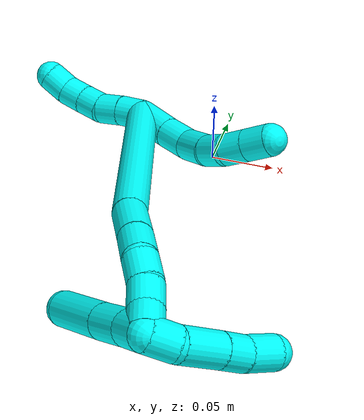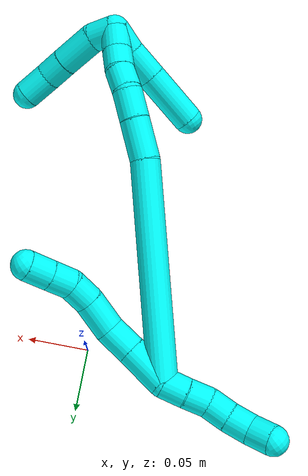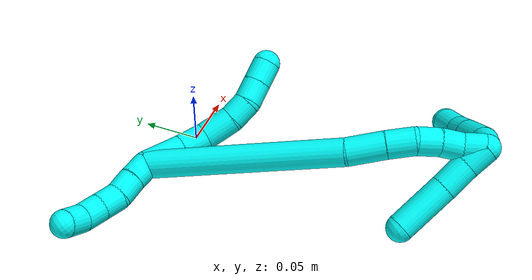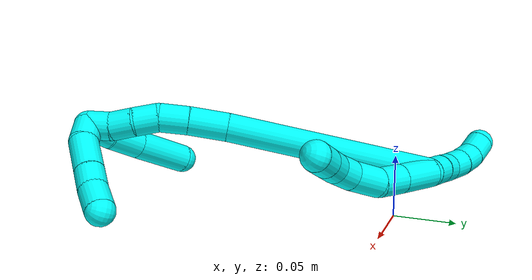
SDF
<sdf version="1.7">
 <world name="default">
  <model name="photoneo_s_sensor">
   <static>1</static>
   <pose>0 0 2 1.57079 1.57079 3.14159</pose>
   <link name="link">
    <inertial><mass>0.1</mass></inertial>
    <sensor name="sensor" type="depth">
     <update_rate>30</update_rate>
     <camera>
      <horizontal_fov>1.22</horizontal_fov>
      <image><width>1920</width><height>1200</height><format>B8G8R8</format></image>
      <clip><near>0.1</near><far>4</far></clip>
      <depth_camera><output>points</output></depth_camera>
     </camera>
     <plugin name="camera_plugin" filename="libgazebo_ros_depth_camera.so">
      <baseline>0.2</baseline>
      <alwaysOn>1</alwaysOn>
      <updateRate>0.0</updateRate>
      <cameraName>camera_ir</cameraName>
      <imageTopicName>/camera/color/image_raw</imageTopicName>
      <cameraInfoTopicName>/camera/color/camera_info</cameraInfoTopicName>
      <depthImageTopicName>/camera/depth/image_raw</depthImageTopicName>
      <depthImageCameraInfoTopicName>/camera/depth/camera_info</depthImageCameraInfoTopicName>
      <pointCloudTopicName>/camera/depth/points</pointCloudTopicName>
      <frameName>fr_optical</frameName>
      <pointCloudCutoff>0.1</pointCloudCutoff>
      <pointCloudCutoffMax>2.0</pointCloudCutoffMax>
      <distortionK1>0</distortionK1>
      <distortionK2>0</distortionK2>
      <distortionK3>0</distortionK3>
      <distortionT1>0</distortionT1>
      <distortionT2>0</distortionT2>
      <CxPrime>0</CxPrime>
      <Cx>0</Cx>
      <Cy>0</Cy>
      <focalLength>0</focalLength>
      <hackBaseline>0</hackBaseline>
     </plugin>
    </sensor>
   </link>
  </model>
  <model name="3">
   <static>0</static>
   <link name="3">
    <collision name="collision-cylinder-e_1_2_8">
     <pose>0.007059 0.000361 0.016135 -0.022396 0.412299 -0.004684</pose>
     <geometry><cylinder><radius>0.0125</radius><length>0.03523</length></cylinder></geometry>
     <surface>
      <friction><ode><mu>1.16</mu><mu2>1.16</mu2><slip1>0</slip1><slip2>0</slip2></ode></friction>
      <contact><ode><kp>1e+06</kp><kd>1</kd><max_vel>0</max_vel><min_depth>0.001</min_depth></ode></contact>
     </surface>
    </collision>
    <visual name="visual-cylinder-e_1_2_8">
     <pose>0.007059 0.000361 0.016135 -0.022396 0.412299 -0.004684</pose>
     <geometry><cylinder><radius>0.0125</radius><length>0.03523</length></cylinder></geometry>
     <material><ambient>0.003922 1 0.996078 1</ambient></material>
    </visual>
    <collision name="collision-cylinder-e_2_8_9">
     <pose>0.018751 0.001431 0.04379 -0.061424 0.381795 -0.011874</pose>
     <geometry><cylinder><radius>0.0125</radius><length>0.024875</length></cylinder></geometry>
     <surface>
      <friction><ode><mu>1.16</mu><mu2>1.16</mu2><slip1>0</slip1><slip2>0</slip2></ode></friction>
      <contact><ode><kp>1e+06</kp><kd>1</kd><max_vel>0</max_vel><min_depth>0.001</min_depth></ode></contact>
     </surface>
    </collision>
    <visual name="visual-cylinder-e_2_8_9">
     <pose>0.018751 0.001431 0.04379 -0.061424 0.381795 -0.011874</pose>
     <geometry><cylinder><radius>0.0125</radius><length>0.024875</length></cylinder></geometry>
     <material><ambient>0.003922 1 0.996078 1</ambient></material>
    </visual>
    <collision name="collision-cylinder-e_3_9_10">
     <pose>0.0241 0.001727 0.069868 0.028341 0.049011 0.000695</pose>
     <geometry><cylinder><radius>0.0125</radius><length>0.029162</length></cylinder></geometry>
     <surface>
      <friction><ode><mu>1.16</mu><mu2>1.16</mu2><slip1>0</slip1><slip2>0</slip2></ode></friction>
      <contact><ode><kp>1e+06</kp><kd>1</kd><max_vel>0</max_vel><min_depth>0.001</min_depth></ode></contact>
     </surface>
    </collision>
    <visual name="visual-cylinder-e_3_9_10">
     <pose>0.0241 0.001727 0.069868 0.028341 0.049011 0.000695</pose>
     <geometry><cylinder><radius>0.0125</radius><length>0.029162</length></cylinder></geometry>
     <material><ambient>0.003922 1 0.996078 1</ambient></material>
    </visual>
    <collision name="collision-cylinder-e_4_10_11">
     <pose>0.024379 0.003179 0.094385 -0.185067 -0.042907 0.003982</pose>
     <geometry><cylinder><radius>0.0125</radius><length>0.020284</length></cylinder></geometry>
     <surface>
      <friction><ode><mu>1.16</mu><mu2>1.16</mu2><slip1>0</slip1><slip2>0</slip2></ode></friction>
      <contact><ode><kp>1e+06</kp><kd>1</kd><max_vel>0</max_vel><min_depth>0.001</min_depth></ode></contact>
     </surface>
    </collision>
    <visual name="visual-cylinder-e_4_10_11">
     <pose>0.024379 0.003179 0.094385 -0.185067 -0.042907 0.003982</pose>
     <geometry><cylinder><radius>0.0125</radius><length>0.020284</length></cylinder></geometry>
     <material><ambient>0.003922 1 0.996078 1</ambient></material>
    </visual>
    <collision name="collision-cylinder-e_5_11_12">
     <pose>0.023597 0.010085 0.113033 -0.525825 -0.034486 0.009283</pose>
     <geometry><cylinder><radius>0.0125</radius><length>0.020101</length></cylinder></geometry>
     <surface>
      <friction><ode><mu>1.16</mu><mu2>1.16</mu2><slip1>0</slip1><slip2>0</slip2></ode></friction>
      <contact><ode><kp>1e+06</kp><kd>1</kd><max_vel>0</max_vel><min_depth>0.001</min_depth></ode></contact>
     </surface>
    </collision>
    <visual name="visual-cylinder-e_5_11_12">
     <pose>0.023597 0.010085 0.113033 -0.525825 -0.034486 0.009283</pose>
     <geometry><cylinder><radius>0.0125</radius><length>0.020101</length></cylinder></geometry>
     <material><ambient>0.003922 1 0.996078 1</ambient></material>
    </visual>
    <collision name="collision-cylinder-e_6_12_6">
     <pose>0.022811 0.020178 0.130541 -0.520107 -0.043241 0.011507</pose>
     <geometry><cylinder><radius>0.0125</radius><length>0.020348</length></cylinder></geometry>
     <surface>
      <friction><ode><mu>1.16</mu><mu2>1.16</mu2><slip1>0</slip1><slip2>0</slip2></ode></friction>
      <contact><ode><kp>1e+06</kp><kd>1</kd><max_vel>0</max_vel><min_depth>0.001</min_depth></ode></contact>
     </surface>
    </collision>
    <visual name="visual-cylinder-e_6_12_6">
     <pose>0.022811 0.020178 0.130541 -0.520107 -0.043241 0.011507</pose>
     <geometry><cylinder><radius>0.0125</radius><length>0.020348</length></cylinder></geometry>
     <material><ambient>0.003922 1 0.996078 1</ambient></material>
    </visual>
    <collision name="collision-cylinder-e_1_2_13">
     <pose>-0.003407 -0.003917 -0.008547 2.7119 -0.347706 -1.35537</pose>
     <geometry><cylinder><radius>0.0125</radius><length>0.02</length></cylinder></geometry>
     <surface>
      <friction><ode><mu>1.16</mu><mu2>1.16</mu2><slip1>0</slip1><slip2>0</slip2></ode></friction>
      <contact><ode><kp>1e+06</kp><kd>1</kd><max_vel>0</max_vel><min_depth>0.001</min_depth></ode></contact>
     </surface>
    </collision>
    <visual name="visual-cylinder-e_1_2_13">
     <pose>-0.003407 -0.003917 -0.008547 2.7119 -0.347706 -1.35537</pose>
     <geometry><cylinder><radius>0.0125</radius><length>0.02</length></cylinder></geometry>
     <material><ambient>0.003922 1 0.996078 1</ambient></material>
    </visual>
    <collision name="collision-cylinder-e_2_13_14">
     <pose>-0.009563 -0.012235 -0.025642 2.66601 -0.278394 -1.04823</pose>
     <geometry><cylinder><radius>0.0125</radius><length>0.02</length></cylinder></geometry>
     <surface>
      <friction><ode><mu>1.16</mu><mu2>1.16</mu2><slip1>0</slip1><slip2>0</slip2></ode></friction>
      <contact><ode><kp>1e+06</kp><kd>1</kd><max_vel>0</max_vel><min_depth>0.001</min_depth></ode></contact>
     </surface>
    </collision>
    <visual name="visual-cylinder-e_2_13_14">
     <pose>-0.009563 -0.012235 -0.025642 2.66601 -0.278394 -1.04823</pose>
     <geometry><cylinder><radius>0.0125</radius><length>0.02</length></cylinder></geometry>
     <material><ambient>0.003922 1 0.996078 1</ambient></material>
    </visual>
    <collision name="collision-cylinder-e_3_14_15">
     <pose>-0.016786 -0.018461 -0.042945 2.93625 -0.463946 -2.319</pose>
     <geometry><cylinder><radius>0.0125</radius><length>0.02</length></cylinder></geometry>
     <surface>
      <friction><ode><mu>1.16</mu><mu2>1.16</mu2><slip1>0</slip1><slip2>0</slip2></ode></friction>
      <contact><ode><kp>1e+06</kp><kd>1</kd><max_vel>0</max_vel><min_depth>0.001</min_depth></ode></contact>
     </surface>
    </collision>
    <visual name="visual-cylinder-e_3_14_15">
     <pose>-0.016786 -0.018461 -0.042945 2.93625 -0.463946 -2.319</pose>
     <geometry><cylinder><radius>0.0125</radius><length>0.02</length></cylinder></geometry>
     <material><ambient>0.003922 1 0.996078 1</ambient></material>
    </visual>
    <collision name="collision-cylinder-e_4_15_16">
     <pose>-0.02671 -0.022744 -0.059716 2.84394 -0.5763 -2.20496</pose>
     <geometry><cylinder><radius>0.0125</radius><length>0.02</length></cylinder></geometry>
     <surface>
      <friction><ode><mu>1.16</mu><mu2>1.16</mu2><slip1>0</slip1><slip2>0</slip2></ode></friction>
      <contact><ode><kp>1e+06</kp><kd>1</kd><max_vel>0</max_vel><min_depth>0.001</min_depth></ode></contact>
     </surface>
    </collision>
    <visual name="visual-cylinder-e_4_15_16">
     <pose>-0.02671 -0.022744 -0.059716 2.84394 -0.5763 -2.20496</pose>
     <geometry><cylinder><radius>0.0125</radius><length>0.02</length></cylinder></geometry>
     <material><ambient>0.003922 1 0.996078 1</ambient></material>
    </visual>
    <collision name="collision-cylinder-e_5_16_5">
     <pose>-0.039973 -0.027229 -0.073635 2.81099 -0.89681 -2.47402</pose>
     <geometry><cylinder><radius>0.0125</radius><length>0.02</length></cylinder></geometry>
     <surface>
      <friction><ode><mu>1.16</mu><mu2>1.16</mu2><slip1>0</slip1><slip2>0</slip2></ode></friction>
      <contact><ode><kp>1e+06</kp><kd>1</kd><max_vel>0</max_vel><min_depth>0.001</min_depth></ode></contact>
     </surface>
    </collision>
    <visual name="visual-cylinder-e_5_16_5">
     <pose>-0.039973 -0.027229 -0.073635 2.81099 -0.89681 -2.47402</pose>
     <geometry><cylinder><radius>0.0125</radius><length>0.02</length></cylinder></geometry>
     <material><ambient>0.003922 1 0.996078 1</ambient></material>
    </visual>
    <collision name="collision-cylinder-e_1_2_17">
     <pose>0.004021 -0.051388 0.073144 0.612443 0.044948 0.014213</pose>
     <geometry><cylinder><radius>0.0125</radius><length>0.178964</length></cylinder></geometry>
     <surface>
      <friction><ode><mu>1.16</mu><mu2>1.16</mu2><slip1>0</slip1><slip2>0</slip2></ode></friction>
      <contact><ode><kp>1e+06</kp><kd>1</kd><max_vel>0</max_vel><min_depth>0.001</min_depth></ode></contact>
     </surface>
    </collision>
    <visual name="visual-cylinder-e_1_2_17">
     <pose>0.004021 -0.051388 0.073144 0.612443 0.044948 0.014213</pose>
     <geometry><cylinder><radius>0.0125</radius><length>0.178964</length></cylinder></geometry>
     <material><ambient>0.003922 1 0.996078 1</ambient></material>
    </visual>
    <collision name="collision-cylinder-e_2_17_18">
     <pose>0.010019 -0.110287 0.161653 0.454665 0.115114 0.026657</pose>
     <geometry><cylinder><radius>0.0125</radius><length>0.034432</length></cylinder></geometry>
     <surface>
      <friction><ode><mu>1.16</mu><mu2>1.16</mu2><slip1>0</slip1><slip2>0</slip2></ode></friction>
      <contact><ode><kp>1e+06</kp><kd>1</kd><max_vel>0</max_vel><min_depth>0.001</min_depth></ode></contact>
     </surface>
    </collision>
    <visual name="visual-cylinder-e_2_17_18">
     <pose>0.010019 -0.110287 0.161653 0.454665 0.115114 0.026657</pose>
     <geometry><cylinder><radius>0.0125</radius><length>0.034432</length></cylinder></geometry>
     <material><ambient>0.003922 1 0.996078 1</ambient></material>
    </visual>
    <collision name="collision-cylinder-e_3_18_19">
     <pose>0.014147 -0.123547 0.18803 0.481119 0.171433 0.042151</pose>
     <geometry><cylinder><radius>0.0125</radius><length>0.025215</length></cylinder></geometry>
     <surface>
      <friction><ode><mu>1.16</mu><mu2>1.16</mu2><slip1>0</slip1><slip2>0</slip2></ode></friction>
      <contact><ode><kp>1e+06</kp><kd>1</kd><max_vel>0</max_vel><min_depth>0.001</min_depth></ode></contact>
     </surface>
    </collision>
    <visual name="visual-cylinder-e_3_18_19">
     <pose>0.014147 -0.123547 0.18803 0.481119 0.171433 0.042151</pose>
     <geometry><cylinder><radius>0.0125</radius><length>0.025215</length></cylinder></geometry>
     <material><ambient>0.003922 1 0.996078 1</ambient></material>
    </visual>
    <collision name="collision-cylinder-e_4_19_20">
     <pose>0.020937 -0.134163 0.207188 0.538617 0.454718 0.127544</pose>
     <geometry><cylinder><radius>0.0125</radius><length>0.021124</length></cylinder></geometry>
     <surface>
      <friction><ode><mu>1.16</mu><mu2>1.16</mu2><slip1>0</slip1><slip2>0</slip2></ode></friction>
      <contact><ode><kp>1e+06</kp><kd>1</kd><max_vel>0</max_vel><min_depth>0.001</min_depth></ode></contact>
     </surface>
    </collision>
    <visual name="visual-cylinder-e_4_19_20">
     <pose>0.020937 -0.134163 0.207188 0.538617 0.454718 0.127544</pose>
     <geometry><cylinder><radius>0.0125</radius><length>0.021124</length></cylinder></geometry>
     <material><ambient>0.003922 1 0.996078 1</ambient></material>
    </visual>
    <collision name="collision-cylinder-e_5_20_21">
     <pose>0.029891 -0.145182 0.222048 0.741679 0.442523 0.174486</pose>
     <geometry><cylinder><radius>0.0125</radius><length>0.020155</length></cylinder></geometry>
     <surface>
      <friction><ode><mu>1.16</mu><mu2>1.16</mu2><slip1>0</slip1><slip2>0</slip2></ode></friction>
      <contact><ode><kp>1e+06</kp><kd>1</kd><max_vel>0</max_vel><min_depth>0.001</min_depth></ode></contact>
     </surface>
    </collision>
    <visual name="visual-cylinder-e_5_20_21">
     <pose>0.029891 -0.145182 0.222048 0.741679 0.442523 0.174486</pose>
     <geometry><cylinder><radius>0.0125</radius><length>0.020155</length></cylinder></geometry>
     <material><ambient>0.003922 1 0.996078 1</ambient></material>
    </visual>
    <collision name="collision-cylinder-e_6_21_1">
     <pose>0.036271 -0.157358 0.236544 0.658837 0.206798 0.070922</pose>
     <geometry><cylinder><radius>0.0125</radius><length>0.02011</length></cylinder></geometry>
     <surface>
      <friction><ode><mu>1.16</mu><mu2>1.16</mu2><slip1>0</slip1><slip2>0</slip2></ode></friction>
      <contact><ode><kp>1e+06</kp><kd>1</kd><max_vel>0</max_vel><min_depth>0.001</min_depth></ode></contact>
     </surface>
    </collision>
    <visual name="visual-cylinder-e_6_21_1">
     <pose>0.036271 -0.157358 0.236544 0.658837 0.206798 0.070922</pose>
     <geometry><cylinder><radius>0.0125</radius><length>0.02011</length></cylinder></geometry>
     <material><ambient>0.003922 1 0.996078 1</ambient></material>
    </visual>
    <collision name="collision-cylinder-e_1_1_22">
     <pose>0.039488 -0.16377 0.233104 3.10709 0.102296 2.49153</pose>
     <geometry><cylinder><radius>0.0125</radius><length>0.022573</length></cylinder></geometry>
     <surface>
      <friction><ode><mu>1.16</mu><mu2>1.16</mu2><slip1>0</slip1><slip2>0</slip2></ode></friction>
      <contact><ode><kp>1e+06</kp><kd>1</kd><max_vel>0</max_vel><min_depth>0.001</min_depth></ode></contact>
     </surface>
    </collision>
    <visual name="visual-cylinder-e_1_1_22">
     <pose>0.039488 -0.16377 0.233104 3.10709 0.102296 2.49153</pose>
     <geometry><cylinder><radius>0.0125</radius><length>0.022573</length></cylinder></geometry>
     <material><ambient>0.003922 1 0.996078 1</ambient></material>
    </visual>
    <collision name="collision-cylinder-e_2_22_23">
     <pose>0.040981 -0.166078 0.208124 3.00294 0.024523 0.349574</pose>
     <geometry><cylinder><radius>0.0125</radius><length>0.027794</length></cylinder></geometry>
     <surface>
      <friction><ode><mu>1.16</mu><mu2>1.16</mu2><slip1>0</slip1><slip2>0</slip2></ode></friction>
      <contact><ode><kp>1e+06</kp><kd>1</kd><max_vel>0</max_vel><min_depth>0.001</min_depth></ode></contact>
     </surface>
    </collision>
    <visual name="visual-cylinder-e_2_22_23">
     <pose>0.040981 -0.166078 0.208124 3.00294 0.024523 0.349574</pose>
     <geometry><cylinder><radius>0.0125</radius><length>0.027794</length></cylinder></geometry>
     <material><ambient>0.003922 1 0.996078 1</ambient></material>
    </visual>
    <collision name="collision-cylinder-e_3_23_4">
     <pose>0.041309 -0.170966 0.169726 3.02169 -0.000513 -0.008549</pose>
     <geometry><cylinder><radius>0.0125</radius><length>0.049633</length></cylinder></geometry>
     <surface>
      <friction><ode><mu>1.16</mu><mu2>1.16</mu2><slip1>0</slip1><slip2>0</slip2></ode></friction>
      <contact><ode><kp>1e+06</kp><kd>1</kd><max_vel>0</max_vel><min_depth>0.001</min_depth></ode></contact>
     </surface>
    </collision>
    <visual name="visual-cylinder-e_3_23_4">
     <pose>0.041309 -0.170966 0.169726 3.02169 -0.000513 -0.008549</pose>
     <geometry><cylinder><radius>0.0125</radius><length>0.049633</length></cylinder></geometry>
     <material><ambient>0.003922 1 0.996078 1</ambient></material>
    </visual>
    <collision name="collision-cylinder-e_1_1_24">
     <pose>0.046195 -0.156679 0.246785 -1.21911 0.83327 -0.599404</pose>
     <geometry><cylinder><radius>0.0125</radius><length>0.021238</length></cylinder></geometry>
     <surface>
      <friction><ode><mu>1.16</mu><mu2>1.16</mu2><slip1>0</slip1><slip2>0</slip2></ode></friction>
      <contact><ode><kp>1e+06</kp><kd>1</kd><max_vel>0</max_vel><min_depth>0.001</min_depth></ode></contact>
     </surface>
    </collision>
    <visual name="visual-cylinder-e_1_1_24">
     <pose>0.046195 -0.156679 0.246785 -1.21911 0.83327 -0.599404</pose>
     <geometry><cylinder><radius>0.0125</radius><length>0.021238</length></cylinder></geometry>
     <material><ambient>0.003922 1 0.996078 1</ambient></material>
    </visual>
    <collision name="collision-cylinder-e_2_24_25">
     <pose>0.065236 -0.137637 0.247863 -1.68234 0.733149 -0.811067</pose>
     <geometry><cylinder><radius>0.0125</radius><length>0.033415</length></cylinder></geometry>
     <surface>
      <friction><ode><mu>1.16</mu><mu2>1.16</mu2><slip1>0</slip1><slip2>0</slip2></ode></friction>
      <contact><ode><kp>1e+06</kp><kd>1</kd><max_vel>0</max_vel><min_depth>0.001</min_depth></ode></contact>
     </surface>
    </collision>
    <visual name="visual-cylinder-e_2_24_25">
     <pose>0.065236 -0.137637 0.247863 -1.68234 0.733149 -0.811067</pose>
     <geometry><cylinder><radius>0.0125</radius><length>0.033415</length></cylinder></geometry>
     <material><ambient>0.003922 1 0.996078 1</ambient></material>
    </visual>
    <collision name="collision-cylinder-e_3_25_26">
     <pose>0.083364 -0.117944 0.245493 -1.70428 0.752392 -0.848362</pose>
     <geometry><cylinder><radius>0.0125</radius><length>0.020332</length></cylinder></geometry>
     <surface>
      <friction><ode><mu>1.16</mu><mu2>1.16</mu2><slip1>0</slip1><slip2>0</slip2></ode></friction>
      <contact><ode><kp>1e+06</kp><kd>1</kd><max_vel>0</max_vel><min_depth>0.001</min_depth></ode></contact>
     </surface>
    </collision>
    <visual name="visual-cylinder-e_3_25_26">
     <pose>0.083364 -0.117944 0.245493 -1.70428 0.752392 -0.848362</pose>
     <geometry><cylinder><radius>0.0125</radius><length>0.020332</length></cylinder></geometry>
     <material><ambient>0.003922 1 0.996078 1</ambient></material>
    </visual>
    <collision name="collision-cylinder-e_4_26_3">
     <pose>0.097305 -0.100272 0.24346 -1.67182 0.593392 -0.652386</pose>
     <geometry><cylinder><radius>0.0125</radius><length>0.025014</length></cylinder></geometry>
     <surface>
      <friction><ode><mu>1.16</mu><mu2>1.16</mu2><slip1>0</slip1><slip2>0</slip2></ode></friction>
      <contact><ode><kp>1e+06</kp><kd>1</kd><max_vel>0</max_vel><min_depth>0.001</min_depth></ode></contact>
     </surface>
    </collision>
    <visual name="visual-cylinder-e_4_26_3">
     <pose>0.097305 -0.100272 0.24346 -1.67182 0.593392 -0.652386</pose>
     <geometry><cylinder><radius>0.0125</radius><length>0.025014</length></cylinder></geometry>
     <material><ambient>0.003922 1 0.996078 1</ambient></material>
    </visual>
    <collision name="collision-sphere-3">
     <pose>0.104299 -0.089956 0.242414 0 -0 0</pose>
     <geometry><sphere><radius>0.0125</radius></sphere></geometry>
     <surface>
      <friction><ode><mu>1.16</mu><mu2>1.16</mu2><slip1>0</slip1><slip2>0</slip2></ode></friction>
      <contact><ode><kp>1e+06</kp><kd>1</kd><max_vel>0</max_vel><min_depth>0.001</min_depth></ode></contact>
     </surface>
    </collision>
    <visual name="visual-sphere-3">
     <pose>0.104299 -0.089956 0.242414 0 -0 0</pose>
     <geometry><sphere><radius>0.0125</radius></sphere></geometry>
     <material><ambient>0.003922 1 0.996078 1</ambient></material>
    </visual>
    <collision name="collision-sphere-26">
     <pose>0.090311 -0.110588 0.244506 0 -0 0</pose>
     <geometry><sphere><radius>0.0125</radius></sphere></geometry>
     <surface>
      <friction><ode><mu>1.16</mu><mu2>1.16</mu2><slip1>0</slip1><slip2>0</slip2></ode></friction>
      <contact><ode><kp>1e+06</kp><kd>1</kd><max_vel>0</max_vel><min_depth>0.001</min_depth></ode></contact>
     </surface>
    </collision>
    <visual name="visual-sphere-26">
     <pose>0.090311 -0.110588 0.244506 0 -0 0</pose>
     <geometry><sphere><radius>0.0125</radius></sphere></geometry>
     <material><ambient>0.003922 1 0.996078 1</ambient></material>
    </visual>
    <collision name="collision-sphere-25">
     <pose>0.076417 -0.125299 0.246481 0 -0 0</pose>
     <geometry><sphere><radius>0.0125</radius></sphere></geometry>
     <surface>
      <friction><ode><mu>1.16</mu><mu2>1.16</mu2><slip1>0</slip1><slip2>0</slip2></ode></friction>
      <contact><ode><kp>1e+06</kp><kd>1</kd><max_vel>0</max_vel><min_depth>0.001</min_depth></ode></contact>
     </surface>
    </collision>
    <visual name="visual-sphere-25">
     <pose>0.076417 -0.125299 0.246481 0 -0 0</pose>
     <geometry><sphere><radius>0.0125</radius></sphere></geometry>
     <material><ambient>0.003922 1 0.996078 1</ambient></material>
    </visual>
    <collision name="collision-sphere-24">
     <pose>0.054055 -0.149975 0.249245 0 -0 0</pose>
     <geometry><sphere><radius>0.0125</radius></sphere></geometry>
     <surface>
      <friction><ode><mu>1.16</mu><mu2>1.16</mu2><slip1>0</slip1><slip2>0</slip2></ode></friction>
      <contact><ode><kp>1e+06</kp><kd>1</kd><max_vel>0</max_vel><min_depth>0.001</min_depth></ode></contact>
     </surface>
    </collision>
    <visual name="visual-sphere-24">
     <pose>0.054055 -0.149975 0.249245 0 -0 0</pose>
     <geometry><sphere><radius>0.0125</radius></sphere></geometry>
     <material><ambient>0.003922 1 0.996078 1</ambient></material>
    </visual>
    <collision name="collision-sphere-4">
     <pose>0.041297 -0.173934 0.145088 0 -0 0</pose>
     <geometry><sphere><radius>0.0125</radius></sphere></geometry>
     <surface>
      <friction><ode><mu>1.16</mu><mu2>1.16</mu2><slip1>0</slip1><slip2>0</slip2></ode></friction>
      <contact><ode><kp>1e+06</kp><kd>1</kd><max_vel>0</max_vel><min_depth>0.001</min_depth></ode></contact>
     </surface>
    </collision>
    <visual name="visual-sphere-4">
     <pose>0.041297 -0.173934 0.145088 0 -0 0</pose>
     <geometry><sphere><radius>0.0125</radius></sphere></geometry>
     <material><ambient>0.003922 1 0.996078 1</ambient></material>
    </visual>
    <collision name="collision-sphere-23">
     <pose>0.041322 -0.167998 0.194364 0 -0 0</pose>
     <geometry><sphere><radius>0.0125</radius></sphere></geometry>
     <surface>
      <friction><ode><mu>1.16</mu><mu2>1.16</mu2><slip1>0</slip1><slip2>0</slip2></ode></friction>
      <contact><ode><kp>1e+06</kp><kd>1</kd><max_vel>0</max_vel><min_depth>0.001</min_depth></ode></contact>
     </surface>
    </collision>
    <visual name="visual-sphere-23">
     <pose>0.041322 -0.167998 0.194364 0 -0 0</pose>
     <geometry><sphere><radius>0.0125</radius></sphere></geometry>
     <material><ambient>0.003922 1 0.996078 1</ambient></material>
    </visual>
    <collision name="collision-sphere-22">
     <pose>0.040641 -0.164157 0.221884 0 -0 0</pose>
     <geometry><sphere><radius>0.0125</radius></sphere></geometry>
     <surface>
      <friction><ode><mu>1.16</mu><mu2>1.16</mu2><slip1>0</slip1><slip2>0</slip2></ode></friction>
      <contact><ode><kp>1e+06</kp><kd>1</kd><max_vel>0</max_vel><min_depth>0.001</min_depth></ode></contact>
     </surface>
    </collision>
    <visual name="visual-sphere-22">
     <pose>0.040641 -0.164157 0.221884 0 -0 0</pose>
     <geometry><sphere><radius>0.0125</radius></sphere></geometry>
     <material><ambient>0.003922 1 0.996078 1</ambient></material>
    </visual>
    <collision name="collision-sphere-1">
     <pose>0.038335 -0.163383 0.244325 0 -0 0</pose>
     <geometry><sphere><radius>0.0125</radius></sphere></geometry>
     <surface>
      <friction><ode><mu>1.16</mu><mu2>1.16</mu2><slip1>0</slip1><slip2>0</slip2></ode></friction>
      <contact><ode><kp>1e+06</kp><kd>1</kd><max_vel>0</max_vel><min_depth>0.001</min_depth></ode></contact>
     </surface>
    </collision>
    <visual name="visual-sphere-1">
     <pose>0.038335 -0.163383 0.244325 0 -0 0</pose>
     <geometry><sphere><radius>0.0125</radius></sphere></geometry>
     <material><ambient>0.003922 1 0.996078 1</ambient></material>
    </visual>
    <collision name="collision-sphere-21">
     <pose>0.034206 -0.151334 0.228763 0 -0 0</pose>
     <geometry><sphere><radius>0.0125</radius></sphere></geometry>
     <surface>
      <friction><ode><mu>1.16</mu><mu2>1.16</mu2><slip1>0</slip1><slip2>0</slip2></ode></friction>
      <contact><ode><kp>1e+06</kp><kd>1</kd><max_vel>0</max_vel><min_depth>0.001</min_depth></ode></contact>
     </surface>
    </collision>
    <visual name="visual-sphere-21">
     <pose>0.034206 -0.151334 0.228763 0 -0 0</pose>
     <geometry><sphere><radius>0.0125</radius></sphere></geometry>
     <material><ambient>0.003922 1 0.996078 1</ambient></material>
    </visual>
    <collision name="collision-sphere-12">
     <pose>0.023251 0.015127 0.12172 0 -0 0</pose>
     <geometry><sphere><radius>0.0125</radius></sphere></geometry>
     <surface>
      <friction><ode><mu>1.16</mu><mu2>1.16</mu2><slip1>0</slip1><slip2>0</slip2></ode></friction>
      <contact><ode><kp>1e+06</kp><kd>1</kd><max_vel>0</max_vel><min_depth>0.001</min_depth></ode></contact>
     </surface>
    </collision>
    <visual name="visual-sphere-12">
     <pose>0.023251 0.015127 0.12172 0 -0 0</pose>
     <geometry><sphere><radius>0.0125</radius></sphere></geometry>
     <material><ambient>0.003922 1 0.996078 1</ambient></material>
    </visual>
    <collision name="collision-sphere-11">
     <pose>0.023944 0.005044 0.104345 0 -0 0</pose>
     <geometry><sphere><radius>0.0125</radius></sphere></geometry>
     <surface>
      <friction><ode><mu>1.16</mu><mu2>1.16</mu2><slip1>0</slip1><slip2>0</slip2></ode></friction>
      <contact><ode><kp>1e+06</kp><kd>1</kd><max_vel>0</max_vel><min_depth>0.001</min_depth></ode></contact>
     </surface>
    </collision>
    <visual name="visual-sphere-11">
     <pose>0.023944 0.005044 0.104345 0 -0 0</pose>
     <geometry><sphere><radius>0.0125</radius></sphere></geometry>
     <material><ambient>0.003922 1 0.996078 1</ambient></material>
    </visual>
    <collision name="collision-sphere-10">
     <pose>0.024814 0.001314 0.084426 0 -0 0</pose>
     <geometry><sphere><radius>0.0125</radius></sphere></geometry>
     <surface>
      <friction><ode><mu>1.16</mu><mu2>1.16</mu2><slip1>0</slip1><slip2>0</slip2></ode></friction>
      <contact><ode><kp>1e+06</kp><kd>1</kd><max_vel>0</max_vel><min_depth>0.001</min_depth></ode></contact>
     </surface>
    </collision>
    <visual name="visual-sphere-10">
     <pose>0.024814 0.001314 0.084426 0 -0 0</pose>
     <geometry><sphere><radius>0.0125</radius></sphere></geometry>
     <material><ambient>0.003922 1 0.996078 1</ambient></material>
    </visual>
    <collision name="collision-sphere-9">
     <pose>0.023385 0.00214 0.05531 0 -0 0</pose>
     <geometry><sphere><radius>0.0125</radius></sphere></geometry>
     <surface>
      <friction><ode><mu>1.16</mu><mu2>1.16</mu2><slip1>0</slip1><slip2>0</slip2></ode></friction>
      <contact><ode><kp>1e+06</kp><kd>1</kd><max_vel>0</max_vel><min_depth>0.001</min_depth></ode></contact>
     </surface>
    </collision>
    <visual name="visual-sphere-9">
     <pose>0.023385 0.00214 0.05531 0 -0 0</pose>
     <geometry><sphere><radius>0.0125</radius></sphere></geometry>
     <material><ambient>0.003922 1 0.996078 1</ambient></material>
    </visual>
    <collision name="collision-sphere-2">
     <geometry><sphere><radius>0.0125</radius></sphere></geometry>
     <surface>
      <friction><ode><mu>1.16</mu><mu2>1.16</mu2><slip1>0</slip1><slip2>0</slip2></ode></friction>
      <contact><ode><kp>1e+06</kp><kd>1</kd><max_vel>0</max_vel><min_depth>0.001</min_depth></ode></contact>
     </surface>
    </collision>
    <visual name="visual-sphere-2">
     <geometry><sphere><radius>0.0125</radius></sphere></geometry>
     <material><ambient>0.003922 1 0.996078 1</ambient></material>
    </visual>
    <collision name="collision-sphere-19">
     <pose>0.016298 -0.129296 0.199043 0 -0 0</pose>
     <geometry><sphere><radius>0.0125</radius></sphere></geometry>
     <surface>
      <friction><ode><mu>1.16</mu><mu2>1.16</mu2><slip1>0</slip1><slip2>0</slip2></ode></friction>
      <contact><ode><kp>1e+06</kp><kd>1</kd><max_vel>0</max_vel><min_depth>0.001</min_depth></ode></contact>
     </surface>
    </collision>
    <visual name="visual-sphere-19">
     <pose>0.016298 -0.129296 0.199043 0 -0 0</pose>
     <geometry><sphere><radius>0.0125</radius></sphere></geometry>
     <material><ambient>0.003922 1 0.996078 1</ambient></material>
    </visual>
    <collision name="collision-sphere-8">
     <pose>0.014117 0.000723 0.032269 0 -0 0</pose>
     <geometry><sphere><radius>0.0125</radius></sphere></geometry>
     <surface>
      <friction><ode><mu>1.16</mu><mu2>1.16</mu2><slip1>0</slip1><slip2>0</slip2></ode></friction>
      <contact><ode><kp>1e+06</kp><kd>1</kd><max_vel>0</max_vel><min_depth>0.001</min_depth></ode></contact>
     </surface>
    </collision>
    <visual name="visual-sphere-8">
     <pose>0.014117 0.000723 0.032269 0 -0 0</pose>
     <geometry><sphere><radius>0.0125</radius></sphere></geometry>
     <material><ambient>0.003922 1 0.996078 1</ambient></material>
    </visual>
    <collision name="collision-sphere-6">
     <pose>0.022371 0.025229 0.139361 0 -0 0</pose>
     <geometry><sphere><radius>0.0125</radius></sphere></geometry>
     <surface>
      <friction><ode><mu>1.16</mu><mu2>1.16</mu2><slip1>0</slip1><slip2>0</slip2></ode></friction>
      <contact><ode><kp>1e+06</kp><kd>1</kd><max_vel>0</max_vel><min_depth>0.001</min_depth></ode></contact>
     </surface>
    </collision>
    <visual name="visual-sphere-6">
     <pose>0.022371 0.025229 0.139361 0 -0 0</pose>
     <geometry><sphere><radius>0.0125</radius></sphere></geometry>
     <material><ambient>0.003922 1 0.996078 1</ambient></material>
    </visual>
    <collision name="collision-sphere-13">
     <pose>-0.006815 -0.007833 -0.017094 0 -0 0</pose>
     <geometry><sphere><radius>0.0125</radius></sphere></geometry>
     <surface>
      <friction><ode><mu>1.16</mu><mu2>1.16</mu2><slip1>0</slip1><slip2>0</slip2></ode></friction>
      <contact><ode><kp>1e+06</kp><kd>1</kd><max_vel>0</max_vel><min_depth>0.001</min_depth></ode></contact>
     </surface>
    </collision>
    <visual name="visual-sphere-13">
     <pose>-0.006815 -0.007833 -0.017094 0 -0 0</pose>
     <geometry><sphere><radius>0.0125</radius></sphere></geometry>
     <material><ambient>0.003922 1 0.996078 1</ambient></material>
    </visual>
    <collision name="collision-sphere-14">
     <pose>-0.012311 -0.016638 -0.03419 0 -0 0</pose>
     <geometry><sphere><radius>0.0125</radius></sphere></geometry>
     <surface>
      <friction><ode><mu>1.16</mu><mu2>1.16</mu2><slip1>0</slip1><slip2>0</slip2></ode></friction>
      <contact><ode><kp>1e+06</kp><kd>1</kd><max_vel>0</max_vel><min_depth>0.001</min_depth></ode></contact>
     </surface>
    </collision>
    <visual name="visual-sphere-14">
     <pose>-0.012311 -0.016638 -0.03419 0 -0 0</pose>
     <geometry><sphere><radius>0.0125</radius></sphere></geometry>
     <material><ambient>0.003922 1 0.996078 1</ambient></material>
    </visual>
    <collision name="collision-sphere-15">
     <pose>-0.021261 -0.020285 -0.0517 0 -0 0</pose>
     <geometry><sphere><radius>0.0125</radius></sphere></geometry>
     <surface>
      <friction><ode><mu>1.16</mu><mu2>1.16</mu2><slip1>0</slip1><slip2>0</slip2></ode></friction>
      <contact><ode><kp>1e+06</kp><kd>1</kd><max_vel>0</max_vel><min_depth>0.001</min_depth></ode></contact>
     </surface>
    </collision>
    <visual name="visual-sphere-15">
     <pose>-0.021261 -0.020285 -0.0517 0 -0 0</pose>
     <geometry><sphere><radius>0.0125</radius></sphere></geometry>
     <material><ambient>0.003922 1 0.996078 1</ambient></material>
    </visual>
    <collision name="collision-sphere-16">
     <pose>-0.032159 -0.025203 -0.067732 0 -0 0</pose>
     <geometry><sphere><radius>0.0125</radius></sphere></geometry>
     <surface>
      <friction><ode><mu>1.16</mu><mu2>1.16</mu2><slip1>0</slip1><slip2>0</slip2></ode></friction>
      <contact><ode><kp>1e+06</kp><kd>1</kd><max_vel>0</max_vel><min_depth>0.001</min_depth></ode></contact>
     </surface>
    </collision>
    <visual name="visual-sphere-16">
     <pose>-0.032159 -0.025203 -0.067732 0 -0 0</pose>
     <geometry><sphere><radius>0.0125</radius></sphere></geometry>
     <material><ambient>0.003922 1 0.996078 1</ambient></material>
    </visual>
    <collision name="collision-sphere-5">
     <pose>-0.047786 -0.029255 -0.079538 0 -0 0</pose>
     <geometry><sphere><radius>0.0125</radius></sphere></geometry>
     <surface>
      <friction><ode><mu>1.16</mu><mu2>1.16</mu2><slip1>0</slip1><slip2>0</slip2></ode></friction>
      <contact><ode><kp>1e+06</kp><kd>1</kd><max_vel>0</max_vel><min_depth>0.001</min_depth></ode></contact>
     </surface>
    </collision>
    <visual name="visual-sphere-5">
     <pose>-0.047786 -0.029255 -0.079538 0 -0 0</pose>
     <geometry><sphere><radius>0.0125</radius></sphere></geometry>
     <material><ambient>0.003922 1 0.996078 1</ambient></material>
    </visual>
    <collision name="collision-sphere-17">
     <pose>0.008041 -0.102777 0.146289 0 -0 0</pose>
     <geometry><sphere><radius>0.0125</radius></sphere></geometry>
     <surface>
      <friction><ode><mu>1.16</mu><mu2>1.16</mu2><slip1>0</slip1><slip2>0</slip2></ode></friction>
      <contact><ode><kp>1e+06</kp><kd>1</kd><max_vel>0</max_vel><min_depth>0.001</min_depth></ode></contact>
     </surface>
    </collision>
    <visual name="visual-sphere-17">
     <pose>0.008041 -0.102777 0.146289 0 -0 0</pose>
     <geometry><sphere><radius>0.0125</radius></sphere></geometry>
     <material><ambient>0.003922 1 0.996078 1</ambient></material>
    </visual>
    <collision name="collision-sphere-18">
     <pose>0.011996 -0.117798 0.177018 0 -0 0</pose>
     <geometry><sphere><radius>0.0125</radius></sphere></geometry>
     <surface>
      <friction><ode><mu>1.16</mu><mu2>1.16</mu2><slip1>0</slip1><slip2>0</slip2></ode></friction>
      <contact><ode><kp>1e+06</kp><kd>1</kd><max_vel>0</max_vel><min_depth>0.001</min_depth></ode></contact>
     </surface>
    </collision>
    <visual name="visual-sphere-18">
     <pose>0.011996 -0.117798 0.177018 0 -0 0</pose>
     <geometry><sphere><radius>0.0125</radius></sphere></geometry>
     <material><ambient>0.003922 1 0.996078 1</ambient></material>
    </visual>
    <collision name="collision-sphere-20">
     <pose>0.025576 -0.13903 0.215334 0 -0 0</pose>
     <geometry><sphere><radius>0.0125</radius></sphere></geometry>
     <surface>
      <friction><ode><mu>1.16</mu><mu2>1.16</mu2><slip1>0</slip1><slip2>0</slip2></ode></friction>
      <contact><ode><kp>1e+06</kp><kd>1</kd><max_vel>0</max_vel><min_depth>0.001</min_depth></ode></contact>
     </surface>
    </collision>
    <visual name="visual-sphere-20">
     <pose>0.025576 -0.13903 0.215334 0 -0 0</pose>
     <geometry><sphere><radius>0.0125</radius></sphere></geometry>
     <material><ambient>0.003922 1 0.996078 1</ambient></material>
    </visual>
    <inertial>
     <pose>0.020651 -0.074107 0.116547 0 -0 0</pose>
     <mass>0.75</mass>
     <inertia>
      <ixx>0.000533</ixx>
      <ixy>0</ixy>
      <ixz>0</ixz>
      <iyy>0.000406</iyy>
      <iyz>0</iyz>
      <izz>0.000264</izz>
     </inertia>
    </inertial>
   </link>
   <pose>-0.065312 0.016366 0.01802 0.39984 1.09516 -0.258814</pose>
  </model>
 </world>
</sdf>
